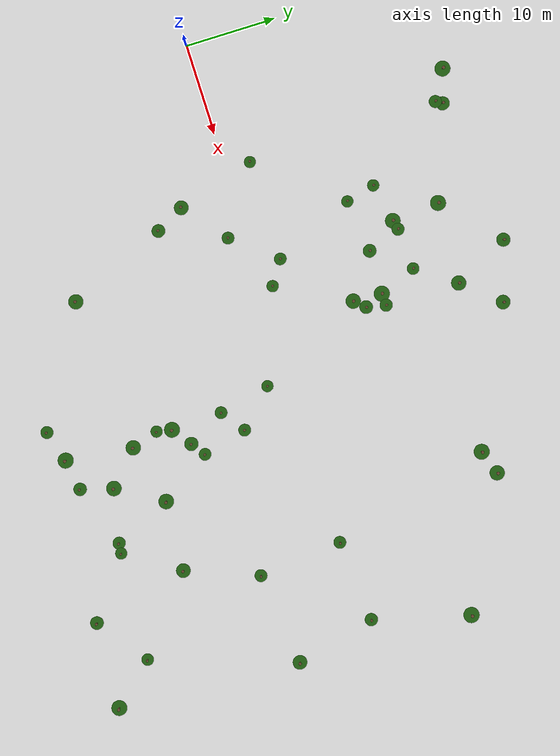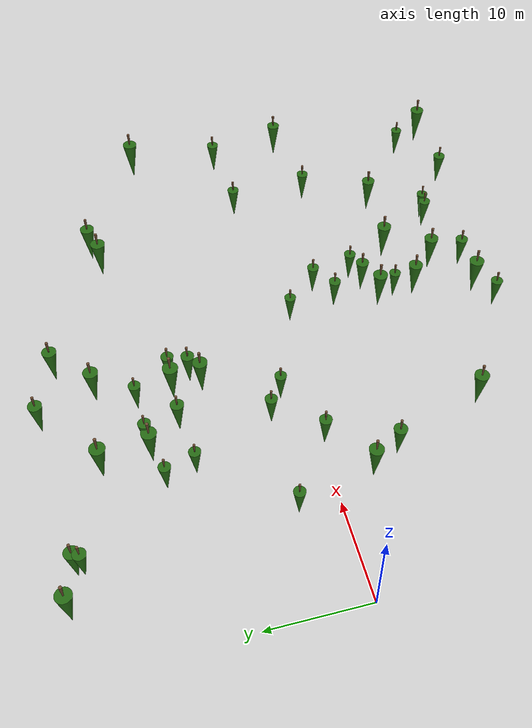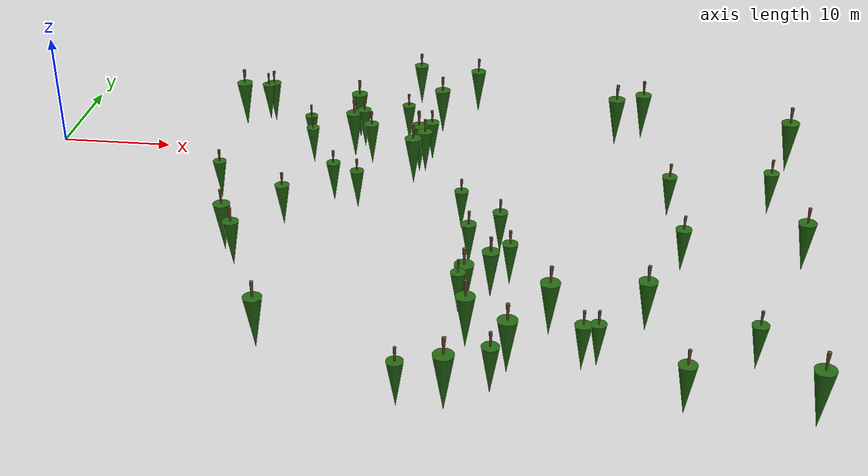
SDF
<sdf version="1.10">
 <model name="lehrforst_trees">
  <static>true</static>
  <link name="tree_0749">
   <collision name="tree_0749_collision">
    <pose>38.928 -26.196 -2.438 3.142 0.035 0</pose>
    <geometry><cone><radius>0.174</radius><length>2.784</length></cone></geometry>
   </collision>
   <visual name="tree_0749_trunk">
    <pose>38.928 -26.196 -2.438 3.142 0.035 0</pose>
    <geometry><cone><radius>0.174</radius><length>2.784</length></cone></geometry>
    <material>
     <ambient>0.42 0.29 0.19 1</ambient>
     <diffuse>0.42 0.29 0.19 1</diffuse>
     <specular>0.42 0.29 0.19 1</specular>
    </material>
   </visual>
   <visual name="tree_0749_leaves">
    <pose>38.928 -26.196 -5.222 3.142 0 0</pose>
    <geometry><cone><radius>0.870</radius><length>5.220</length></cone></geometry>
    <material>
     <ambient>0.14 0.40 0.07 1</ambient>
     <diffuse>0.14 0.40 0.07 1</diffuse>
     <specular>0.14 0.40 0.07 1</specular>
    </material>
   </visual>
  </link>
  <link name="tree_0750">
   <collision name="tree_0750_collision">
    <pose>31.921 12.234 -2.414 3.142 0.017 0</pose>
    <geometry><cone><radius>0.174</radius><length>2.784</length></cone></geometry>
   </collision>
   <visual name="tree_0750_trunk">
    <pose>31.921 12.234 -2.414 3.142 0.017 0</pose>
    <geometry><cone><radius>0.174</radius><length>2.784</length></cone></geometry>
    <material>
     <ambient>0.42 0.29 0.19 1</ambient>
     <diffuse>0.42 0.29 0.19 1</diffuse>
     <specular>0.42 0.29 0.19 1</specular>
    </material>
   </visual>
   <visual name="tree_0750_leaves">
    <pose>31.921 12.234 -5.198 3.142 0 0</pose>
    <geometry><cone><radius>0.870</radius><length>5.220</length></cone></geometry>
    <material>
     <ambient>0.14 0.40 0.07 1</ambient>
     <diffuse>0.14 0.40 0.07 1</diffuse>
     <specular>0.14 0.40 0.07 1</specular>
    </material>
   </visual>
  </link>
  <link name="tree_0751">
   <collision name="tree_0751_collision">
    <pose>10.216 26.211 -5.117 3.142 0.024 0</pose>
    <geometry><cone><radius>0.174</radius><length>2.784</length></cone></geometry>
   </collision>
   <visual name="tree_0751_trunk">
    <pose>10.216 26.211 -5.117 3.142 0.024 0</pose>
    <geometry><cone><radius>0.174</radius><length>2.784</length></cone></geometry>
    <material>
     <ambient>0.42 0.29 0.19 1</ambient>
     <diffuse>0.42 0.29 0.19 1</diffuse>
     <specular>0.42 0.29 0.19 1</specular>
    </material>
   </visual>
   <visual name="tree_0751_leaves">
    <pose>10.216 26.211 -7.901 3.142 0 0</pose>
    <geometry><cone><radius>0.870</radius><length>5.220</length></cone></geometry>
    <material>
     <ambient>0.14 0.40 0.07 1</ambient>
     <diffuse>0.14 0.40 0.07 1</diffuse>
     <specular>0.14 0.40 0.07 1</specular>
    </material>
   </visual>
  </link>
  <link name="tree_0753">
   <collision name="tree_0753_collision">
    <pose>68.038 10.890 0.636 3.142 0.001 0</pose>
    <geometry><cone><radius>0.174</radius><length>2.784</length></cone></geometry>
   </collision>
   <visual name="tree_0753_trunk">
    <pose>68.038 10.890 0.636 3.142 0.001 0</pose>
    <geometry><cone><radius>0.174</radius><length>2.784</length></cone></geometry>
    <material>
     <ambient>0.42 0.29 0.19 1</ambient>
     <diffuse>0.42 0.29 0.19 1</diffuse>
     <specular>0.42 0.29 0.19 1</specular>
    </material>
   </visual>
   <visual name="tree_0753_leaves">
    <pose>68.038 10.890 -2.148 3.142 0 0</pose>
    <geometry><cone><radius>0.870</radius><length>5.220</length></cone></geometry>
    <material>
     <ambient>0.14 0.40 0.07 1</ambient>
     <diffuse>0.14 0.40 0.07 1</diffuse>
     <specular>0.14 0.40 0.07 1</specular>
    </material>
   </visual>
  </link>
  <link name="tree_0756">
   <collision name="tree_0756_collision">
    <pose>24.274 21.160 -3.410 3.142 0.036 0</pose>
    <geometry><cone><radius>0.173</radius><length>2.768</length></cone></geometry>
   </collision>
   <visual name="tree_0756_trunk">
    <pose>24.274 21.160 -3.410 3.142 0.036 0</pose>
    <geometry><cone><radius>0.173</radius><length>2.768</length></cone></geometry>
    <material>
     <ambient>0.42 0.29 0.19 1</ambient>
     <diffuse>0.42 0.29 0.19 1</diffuse>
     <specular>0.42 0.29 0.19 1</specular>
    </material>
   </visual>
   <visual name="tree_0756_leaves">
    <pose>24.274 21.160 -6.178 3.142 0 0</pose>
    <geometry><cone><radius>0.865</radius><length>5.190</length></cone></geometry>
    <material>
     <ambient>0.14 0.40 0.07 1</ambient>
     <diffuse>0.14 0.40 0.07 1</diffuse>
     <specular>0.14 0.40 0.07 1</specular>
    </material>
   </visual>
  </link>
  <link name="tree_0763">
   <collision name="tree_0763_collision">
    <pose>51.596 17.343 -0.779 3.142 0.015 0</pose>
    <geometry><cone><radius>0.172</radius><length>2.752</length></cone></geometry>
   </collision>
   <visual name="tree_0763_trunk">
    <pose>51.596 17.343 -0.779 3.142 0.015 0</pose>
    <geometry><cone><radius>0.172</radius><length>2.752</length></cone></geometry>
    <material>
     <ambient>0.42 0.29 0.19 1</ambient>
     <diffuse>0.42 0.29 0.19 1</diffuse>
     <specular>0.42 0.29 0.19 1</specular>
    </material>
   </visual>
   <visual name="tree_0763_leaves">
    <pose>51.596 17.343 -3.531 3.142 0 0</pose>
    <geometry><cone><radius>0.860</radius><length>5.160</length></cone></geometry>
    <material>
     <ambient>0.14 0.40 0.07 1</ambient>
     <diffuse>0.14 0.40 0.07 1</diffuse>
     <specular>0.14 0.40 0.07 1</specular>
    </material>
   </visual>
  </link>
  <link name="tree_0765">
   <collision name="tree_0765_collision">
    <pose>39.214 -14.090 -1.990 3.142 0.033 0</pose>
    <geometry><cone><radius>0.171</radius><length>2.736</length></cone></geometry>
   </collision>
   <visual name="tree_0765_trunk">
    <pose>39.214 -14.090 -1.990 3.142 0.033 0</pose>
    <geometry><cone><radius>0.171</radius><length>2.736</length></cone></geometry>
    <material>
     <ambient>0.42 0.29 0.19 1</ambient>
     <diffuse>0.42 0.29 0.19 1</diffuse>
     <specular>0.42 0.29 0.19 1</specular>
    </material>
   </visual>
   <visual name="tree_0765_leaves">
    <pose>39.214 -14.090 -4.726 3.142 0 0</pose>
    <geometry><cone><radius>0.855</radius><length>5.130</length></cone></geometry>
    <material>
     <ambient>0.14 0.40 0.07 1</ambient>
     <diffuse>0.14 0.40 0.07 1</diffuse>
     <specular>0.14 0.40 0.07 1</specular>
    </material>
   </visual>
  </link>
  <link name="tree_0772">
   <collision name="tree_0772_collision">
    <pose>66.215 -28.492 0.289 3.142 0.020 0</pose>
    <geometry><cone><radius>0.170</radius><length>2.720</length></cone></geometry>
   </collision>
   <visual name="tree_0772_trunk">
    <pose>66.215 -28.492 0.289 3.142 0.020 0</pose>
    <geometry><cone><radius>0.170</radius><length>2.720</length></cone></geometry>
    <material>
     <ambient>0.42 0.29 0.19 1</ambient>
     <diffuse>0.42 0.29 0.19 1</diffuse>
     <specular>0.42 0.29 0.19 1</specular>
    </material>
   </visual>
   <visual name="tree_0772_leaves">
    <pose>66.215 -28.492 -2.431 3.142 0 0</pose>
    <geometry><cone><radius>0.850</radius><length>5.100</length></cone></geometry>
    <material>
     <ambient>0.14 0.40 0.07 1</ambient>
     <diffuse>0.14 0.40 0.07 1</diffuse>
     <specular>0.14 0.40 0.07 1</specular>
    </material>
   </visual>
  </link>
  <link name="tree_0776">
   <collision name="tree_0776_collision">
    <pose>24.644 15.816 -3.138 3.142 0.025 0</pose>
    <geometry><cone><radius>0.169</radius><length>2.704</length></cone></geometry>
   </collision>
   <visual name="tree_0776_trunk">
    <pose>24.644 15.816 -3.138 3.142 0.025 0</pose>
    <geometry><cone><radius>0.169</radius><length>2.704</length></cone></geometry>
    <material>
     <ambient>0.42 0.29 0.19 1</ambient>
     <diffuse>0.42 0.29 0.19 1</diffuse>
     <specular>0.42 0.29 0.19 1</specular>
    </material>
   </visual>
   <visual name="tree_0776_leaves">
    <pose>24.644 15.816 -5.842 3.142 0 0</pose>
    <geometry><cone><radius>0.845</radius><length>5.070</length></cone></geometry>
    <material>
     <ambient>0.14 0.40 0.07 1</ambient>
     <diffuse>0.14 0.40 0.07 1</diffuse>
     <specular>0.14 0.40 0.07 1</specular>
    </material>
   </visual>
  </link>
  <link name="tree_0780">
   <collision name="tree_0780_collision">
    <pose>46.467 -17.007 -1.354 3.142 0.034 0</pose>
    <geometry><cone><radius>0.168</radius><length>2.688</length></cone></geometry>
   </collision>
   <visual name="tree_0780_trunk">
    <pose>46.467 -17.007 -1.354 3.142 0.034 0</pose>
    <geometry><cone><radius>0.168</radius><length>2.688</length></cone></geometry>
    <material>
     <ambient>0.42 0.29 0.19 1</ambient>
     <diffuse>0.42 0.29 0.19 1</diffuse>
     <specular>0.42 0.29 0.19 1</specular>
    </material>
   </visual>
   <visual name="tree_0780_leaves">
    <pose>46.467 -17.007 -4.042 3.142 0 0</pose>
    <geometry><cone><radius>0.840</radius><length>5.040</length></cone></geometry>
    <material>
     <ambient>0.14 0.40 0.07 1</ambient>
     <diffuse>0.14 0.40 0.07 1</diffuse>
     <specular>0.14 0.40 0.07 1</specular>
    </material>
   </visual>
  </link>
  <link name="tree_0782">
   <collision name="tree_0782_collision">
    <pose>43.416 -22.044 -1.789 3.142 0.003 0</pose>
    <geometry><cone><radius>0.167</radius><length>2.672</length></cone></geometry>
   </collision>
   <visual name="tree_0782_trunk">
    <pose>43.416 -22.044 -1.789 3.142 0.003 0</pose>
    <geometry><cone><radius>0.167</radius><length>2.672</length></cone></geometry>
    <material>
     <ambient>0.42 0.29 0.19 1</ambient>
     <diffuse>0.42 0.29 0.19 1</diffuse>
     <specular>0.42 0.29 0.19 1</specular>
    </material>
   </visual>
   <visual name="tree_0782_leaves">
    <pose>43.416 -22.044 -4.461 3.142 0 0</pose>
    <geometry><cone><radius>0.835</radius><length>5.010</length></cone></geometry>
    <material>
     <ambient>0.14 0.40 0.07 1</ambient>
     <diffuse>0.14 0.40 0.07 1</diffuse>
     <specular>0.14 0.40 0.07 1</specular>
    </material>
   </visual>
  </link>
  <link name="tree_0783">
   <collision name="tree_0783_collision">
    <pose>31.758 9.007 -2.280 3.142 0.028 0</pose>
    <geometry><cone><radius>0.166</radius><length>2.656</length></cone></geometry>
   </collision>
   <visual name="tree_0783_trunk">
    <pose>31.758 9.007 -2.280 3.142 0.028 0</pose>
    <geometry><cone><radius>0.166</radius><length>2.656</length></cone></geometry>
    <material>
     <ambient>0.42 0.29 0.19 1</ambient>
     <diffuse>0.42 0.29 0.19 1</diffuse>
     <specular>0.42 0.29 0.19 1</specular>
    </material>
   </visual>
   <visual name="tree_0783_leaves">
    <pose>31.758 9.007 -4.936 3.142 0 0</pose>
    <geometry><cone><radius>0.830</radius><length>4.980</length></cone></geometry>
    <material>
     <ambient>0.14 0.40 0.07 1</ambient>
     <diffuse>0.14 0.40 0.07 1</diffuse>
     <specular>0.14 0.40 0.07 1</specular>
    </material>
   </visual>
  </link>
  <link name="tree_0788">
   <collision name="tree_0788_collision">
    <pose>33.335 20.586 -2.241 3.142 0.016 0</pose>
    <geometry><cone><radius>0.165</radius><length>2.640</length></cone></geometry>
   </collision>
   <visual name="tree_0788_trunk">
    <pose>33.335 20.586 -2.241 3.142 0.016 0</pose>
    <geometry><cone><radius>0.165</radius><length>2.640</length></cone></geometry>
    <material>
     <ambient>0.42 0.29 0.19 1</ambient>
     <diffuse>0.42 0.29 0.19 1</diffuse>
     <specular>0.42 0.29 0.19 1</specular>
    </material>
   </visual>
   <visual name="tree_0788_leaves">
    <pose>33.335 20.586 -4.881 3.142 0 0</pose>
    <geometry><cone><radius>0.825</radius><length>4.950</length></cone></geometry>
    <material>
     <ambient>0.14 0.40 0.07 1</ambient>
     <diffuse>0.14 0.40 0.07 1</diffuse>
     <specular>0.14 0.40 0.07 1</specular>
    </material>
   </visual>
  </link>
  <link name="tree_0790">
   <collision name="tree_0790_collision">
    <pose>39.817 -18.717 -2.068 3.142 0.014 0</pose>
    <geometry><cone><radius>0.165</radius><length>2.640</length></cone></geometry>
   </collision>
   <visual name="tree_0790_trunk">
    <pose>39.817 -18.717 -2.068 3.142 0.014 0</pose>
    <geometry><cone><radius>0.165</radius><length>2.640</length></cone></geometry>
    <material>
     <ambient>0.42 0.29 0.19 1</ambient>
     <diffuse>0.42 0.29 0.19 1</diffuse>
     <specular>0.42 0.29 0.19 1</specular>
    </material>
   </visual>
   <visual name="tree_0790_leaves">
    <pose>39.817 -18.717 -4.708 3.142 0 0</pose>
    <geometry><cone><radius>0.825</radius><length>4.950</length></cone></geometry>
    <material>
     <ambient>0.14 0.40 0.07 1</ambient>
     <diffuse>0.14 0.40 0.07 1</diffuse>
     <specular>0.14 0.40 0.07 1</specular>
    </material>
   </visual>
  </link>
  <link name="tree_0793">
   <collision name="tree_0793_collision">
    <pose>22.698 -19.930 -2.718 3.142 0.026 0</pose>
    <geometry><cone><radius>0.164</radius><length>2.624</length></cone></geometry>
   </collision>
   <visual name="tree_0793_trunk">
    <pose>22.698 -19.930 -2.718 3.142 0.026 0</pose>
    <geometry><cone><radius>0.164</radius><length>2.624</length></cone></geometry>
    <material>
     <ambient>0.42 0.29 0.19 1</ambient>
     <diffuse>0.42 0.29 0.19 1</diffuse>
     <specular>0.42 0.29 0.19 1</specular>
    </material>
   </visual>
   <visual name="tree_0793_leaves">
    <pose>22.698 -19.930 -5.342 3.142 0 0</pose>
    <geometry><cone><radius>0.820</radius><length>4.920</length></cone></geometry>
    <material>
     <ambient>0.14 0.40 0.07 1</ambient>
     <diffuse>0.14 0.40 0.07 1</diffuse>
     <specular>0.14 0.40 0.07 1</specular>
    </material>
   </visual>
  </link>
  <link name="tree_0794">
   <collision name="tree_0794_collision">
    <pose>54.276 18.240 -0.547 3.142 0.006 0</pose>
    <geometry><cone><radius>0.164</radius><length>2.624</length></cone></geometry>
   </collision>
   <visual name="tree_0794_trunk">
    <pose>54.276 18.240 -0.547 3.142 0.006 0</pose>
    <geometry><cone><radius>0.164</radius><length>2.624</length></cone></geometry>
    <material>
     <ambient>0.42 0.29 0.19 1</ambient>
     <diffuse>0.42 0.29 0.19 1</diffuse>
     <specular>0.42 0.29 0.19 1</specular>
    </material>
   </visual>
   <visual name="tree_0794_leaves">
    <pose>54.276 18.240 -3.171 3.142 0 0</pose>
    <geometry><cone><radius>0.820</radius><length>4.920</length></cone></geometry>
    <material>
     <ambient>0.14 0.40 0.07 1</ambient>
     <diffuse>0.14 0.40 0.07 1</diffuse>
     <specular>0.14 0.40 0.07 1</specular>
    </material>
   </visual>
  </link>
  <link name="tree_0814">
   <collision name="tree_0814_collision">
    <pose>16.380 -5.848 -2.428 3.142 0.001 0</pose>
    <geometry><cone><radius>0.159</radius><length>2.544</length></cone></geometry>
   </collision>
   <visual name="tree_0814_trunk">
    <pose>16.380 -5.848 -2.428 3.142 0.001 0</pose>
    <geometry><cone><radius>0.159</radius><length>2.544</length></cone></geometry>
    <material>
     <ambient>0.42 0.29 0.19 1</ambient>
     <diffuse>0.42 0.29 0.19 1</diffuse>
     <specular>0.42 0.29 0.19 1</specular>
    </material>
   </visual>
   <visual name="tree_0814_leaves">
    <pose>16.380 -5.848 -4.972 3.142 0 0</pose>
    <geometry><cone><radius>0.795</radius><length>4.770</length></cone></geometry>
    <material>
     <ambient>0.14 0.40 0.07 1</ambient>
     <diffuse>0.14 0.40 0.07 1</diffuse>
     <specular>0.14 0.40 0.07 1</specular>
    </material>
   </visual>
  </link>
  <link name="tree_0816">
   <collision name="tree_0816_collision">
    <pose>36.776 24.527 -1.614 3.142 0.029 0</pose>
    <geometry><cone><radius>0.158</radius><length>2.528</length></cone></geometry>
   </collision>
   <visual name="tree_0816_trunk">
    <pose>36.776 24.527 -1.614 3.142 0.029 0</pose>
    <geometry><cone><radius>0.158</radius><length>2.528</length></cone></geometry>
    <material>
     <ambient>0.42 0.29 0.19 1</ambient>
     <diffuse>0.42 0.29 0.19 1</diffuse>
     <specular>0.42 0.29 0.19 1</specular>
    </material>
   </visual>
   <visual name="tree_0816_leaves">
    <pose>36.776 24.527 -4.142 3.142 0 0</pose>
    <geometry><cone><radius>0.790</radius><length>4.740</length></cone></geometry>
    <material>
     <ambient>0.14 0.40 0.07 1</ambient>
     <diffuse>0.14 0.40 0.07 1</diffuse>
     <specular>0.14 0.40 0.07 1</specular>
    </material>
   </visual>
  </link>
  <link name="tree_0817">
   <collision name="tree_0817_collision">
    <pose>54.143 -17.441 -0.358 3.142 0.003 0</pose>
    <geometry><cone><radius>0.157</radius><length>2.512</length></cone></geometry>
   </collision>
   <visual name="tree_0817_trunk">
    <pose>54.143 -17.441 -0.358 3.142 0.003 0</pose>
    <geometry><cone><radius>0.157</radius><length>2.512</length></cone></geometry>
    <material>
     <ambient>0.42 0.29 0.19 1</ambient>
     <diffuse>0.42 0.29 0.19 1</diffuse>
     <specular>0.42 0.29 0.19 1</specular>
    </material>
   </visual>
   <visual name="tree_0817_leaves">
    <pose>54.143 -17.441 -2.870 3.142 0 0</pose>
    <geometry><cone><radius>0.785</radius><length>4.710</length></cone></geometry>
    <material>
     <ambient>0.14 0.40 0.07 1</ambient>
     <diffuse>0.14 0.40 0.07 1</diffuse>
     <specular>0.14 0.40 0.07 1</specular>
    </material>
   </visual>
  </link>
  <link name="tree_0819">
   <collision name="tree_0819_collision">
    <pose>67.345 -8.341 0.613 3.142 0.013 0</pose>
    <geometry><cone><radius>0.156</radius><length>2.496</length></cone></geometry>
   </collision>
   <visual name="tree_0819_trunk">
    <pose>67.345 -8.341 0.613 3.142 0.013 0</pose>
    <geometry><cone><radius>0.156</radius><length>2.496</length></cone></geometry>
    <material>
     <ambient>0.42 0.29 0.19 1</ambient>
     <diffuse>0.42 0.29 0.19 1</diffuse>
     <specular>0.42 0.29 0.19 1</specular>
    </material>
   </visual>
   <visual name="tree_0819_leaves">
    <pose>67.345 -8.341 -1.883 3.142 0 0</pose>
    <geometry><cone><radius>0.780</radius><length>4.680</length></cone></geometry>
    <material>
     <ambient>0.14 0.40 0.07 1</ambient>
     <diffuse>0.14 0.40 0.07 1</diffuse>
     <specular>0.14 0.40 0.07 1</specular>
    </material>
   </visual>
  </link>
  <link name="tree_0823">
   <collision name="tree_0823_collision">
    <pose>13.922 25.006 -4.400 3.142 0.031 0</pose>
    <geometry><cone><radius>0.154</radius><length>2.464</length></cone></geometry>
   </collision>
   <visual name="tree_0823_trunk">
    <pose>13.922 25.006 -4.400 3.142 0.031 0</pose>
    <geometry><cone><radius>0.154</radius><length>2.464</length></cone></geometry>
    <material>
     <ambient>0.42 0.29 0.19 1</ambient>
     <diffuse>0.42 0.29 0.19 1</diffuse>
     <specular>0.42 0.29 0.19 1</specular>
    </material>
   </visual>
   <visual name="tree_0823_leaves">
    <pose>13.922 25.006 -6.864 3.142 0 0</pose>
    <geometry><cone><radius>0.770</radius><length>4.620</length></cone></geometry>
    <material>
     <ambient>0.14 0.40 0.07 1</ambient>
     <diffuse>0.14 0.40 0.07 1</diffuse>
     <specular>0.14 0.40 0.07 1</specular>
    </material>
   </visual>
  </link>
  <link name="tree_0830">
   <collision name="tree_0830_collision">
    <pose>41.306 -12.521 -1.571 3.142 0.004 0</pose>
    <geometry><cone><radius>0.152</radius><length>2.432</length></cone></geometry>
   </collision>
   <visual name="tree_0830_trunk">
    <pose>41.306 -12.521 -1.571 3.142 0.004 0</pose>
    <geometry><cone><radius>0.152</radius><length>2.432</length></cone></geometry>
    <material>
     <ambient>0.42 0.29 0.19 1</ambient>
     <diffuse>0.42 0.29 0.19 1</diffuse>
     <specular>0.42 0.29 0.19 1</specular>
    </material>
   </visual>
   <visual name="tree_0830_leaves">
    <pose>41.306 -12.521 -4.003 3.142 0 0</pose>
    <geometry><cone><radius>0.760</radius><length>4.560</length></cone></geometry>
    <material>
     <ambient>0.14 0.40 0.07 1</ambient>
     <diffuse>0.14 0.40 0.07 1</diffuse>
     <specular>0.14 0.40 0.07 1</specular>
    </material>
   </visual>
  </link>
  <link name="tree_0831">
   <collision name="tree_0831_collision">
    <pose>30.286 26.655 -2.184 3.142 0.025 0</pose>
    <geometry><cone><radius>0.152</radius><length>2.432</length></cone></geometry>
   </collision>
   <visual name="tree_0831_trunk">
    <pose>30.286 26.655 -2.184 3.142 0.025 0</pose>
    <geometry><cone><radius>0.152</radius><length>2.432</length></cone></geometry>
    <material>
     <ambient>0.42 0.29 0.19 1</ambient>
     <diffuse>0.42 0.29 0.19 1</diffuse>
     <specular>0.42 0.29 0.19 1</specular>
    </material>
   </visual>
   <visual name="tree_0831_leaves">
    <pose>30.286 26.655 -4.616 3.142 0 0</pose>
    <geometry><cone><radius>0.760</radius><length>4.560</length></cone></geometry>
    <material>
     <ambient>0.14 0.40 0.07 1</ambient>
     <diffuse>0.14 0.40 0.07 1</diffuse>
     <specular>0.14 0.40 0.07 1</specular>
    </material>
   </visual>
  </link>
  <link name="tree_0840">
   <collision name="tree_0840_collision">
    <pose>27.053 12.389 -2.618 3.142 0.010 0</pose>
    <geometry><cone><radius>0.148</radius><length>2.368</length></cone></geometry>
   </collision>
   <visual name="tree_0840_trunk">
    <pose>27.053 12.389 -2.618 3.142 0.010 0</pose>
    <geometry><cone><radius>0.148</radius><length>2.368</length></cone></geometry>
    <material>
     <ambient>0.42 0.29 0.19 1</ambient>
     <diffuse>0.42 0.29 0.19 1</diffuse>
     <specular>0.42 0.29 0.19 1</specular>
    </material>
   </visual>
   <visual name="tree_0840_leaves">
    <pose>27.053 12.389 -4.986 3.142 0 0</pose>
    <geometry><cone><radius>0.740</radius><length>4.440</length></cone></geometry>
    <material>
     <ambient>0.14 0.40 0.07 1</ambient>
     <diffuse>0.14 0.40 0.07 1</diffuse>
     <specular>0.14 0.40 0.07 1</specular>
    </material>
   </visual>
  </link>
  <link name="tree_0842">
   <collision name="tree_0842_collision">
    <pose>18.046 -8.983 -2.336 3.142 0.022 0</pose>
    <geometry><cone><radius>0.148</radius><length>2.368</length></cone></geometry>
   </collision>
   <visual name="tree_0842_trunk">
    <pose>18.046 -8.983 -2.336 3.142 0.022 0</pose>
    <geometry><cone><radius>0.148</radius><length>2.368</length></cone></geometry>
    <material>
     <ambient>0.42 0.29 0.19 1</ambient>
     <diffuse>0.42 0.29 0.19 1</diffuse>
     <specular>0.42 0.29 0.19 1</specular>
    </material>
   </visual>
   <visual name="tree_0842_leaves">
    <pose>18.046 -8.983 -4.704 3.142 0 0</pose>
    <geometry><cone><radius>0.740</radius><length>4.440</length></cone></geometry>
    <material>
     <ambient>0.14 0.40 0.07 1</ambient>
     <diffuse>0.14 0.40 0.07 1</diffuse>
     <specular>0.14 0.40 0.07 1</specular>
    </material>
   </visual>
  </link>
  <link name="tree_0846">
   <collision name="tree_0846_collision">
    <pose>32.807 10.151 -2.072 3.142 0.037 0</pose>
    <geometry><cone><radius>0.147</radius><length>2.352</length></cone></geometry>
   </collision>
   <visual name="tree_0846_trunk">
    <pose>32.807 10.151 -2.072 3.142 0.037 0</pose>
    <geometry><cone><radius>0.147</radius><length>2.352</length></cone></geometry>
    <material>
     <ambient>0.42 0.29 0.19 1</ambient>
     <diffuse>0.42 0.29 0.19 1</diffuse>
     <specular>0.42 0.29 0.19 1</specular>
    </material>
   </visual>
   <visual name="tree_0846_leaves">
    <pose>32.807 10.151 -4.424 3.142 0 0</pose>
    <geometry><cone><radius>0.735</radius><length>4.410</length></cone></geometry>
    <material>
     <ambient>0.14 0.40 0.07 1</ambient>
     <diffuse>0.14 0.40 0.07 1</diffuse>
     <specular>0.14 0.40 0.07 1</specular>
    </material>
   </visual>
  </link>
  <link name="tree_0849">
   <collision name="tree_0849_collision">
    <pose>56.758 -28.097 -0.429 3.142 0.017 0</pose>
    <geometry><cone><radius>0.146</radius><length>2.336</length></cone></geometry>
   </collision>
   <visual name="tree_0849_trunk">
    <pose>56.758 -28.097 -0.429 3.142 0.017 0</pose>
    <geometry><cone><radius>0.146</radius><length>2.336</length></cone></geometry>
    <material>
     <ambient>0.42 0.29 0.19 1</ambient>
     <diffuse>0.42 0.29 0.19 1</diffuse>
     <specular>0.42 0.29 0.19 1</specular>
    </material>
   </visual>
   <visual name="tree_0849_leaves">
    <pose>56.758 -28.097 -2.765 3.142 0 0</pose>
    <geometry><cone><radius>0.730</radius><length>4.380</length></cone></geometry>
    <material>
     <ambient>0.14 0.40 0.07 1</ambient>
     <diffuse>0.14 0.40 0.07 1</diffuse>
     <specular>0.14 0.40 0.07 1</specular>
    </material>
   </visual>
  </link>
  <link name="tree_0851">
   <collision name="tree_0851_collision">
    <pose>42.399 -25.593 -1.857 3.142 0.006 0</pose>
    <geometry><cone><radius>0.145</radius><length>2.320</length></cone></geometry>
   </collision>
   <visual name="tree_0851_trunk">
    <pose>42.399 -25.593 -1.857 3.142 0.006 0</pose>
    <geometry><cone><radius>0.145</radius><length>2.320</length></cone></geometry>
    <material>
     <ambient>0.42 0.29 0.19 1</ambient>
     <diffuse>0.42 0.29 0.19 1</diffuse>
     <specular>0.42 0.29 0.19 1</specular>
    </material>
   </visual>
   <visual name="tree_0851_leaves">
    <pose>42.399 -25.593 -4.177 3.142 0 0</pose>
    <geometry><cone><radius>0.725</radius><length>4.350</length></cone></geometry>
    <material>
     <ambient>0.14 0.40 0.07 1</ambient>
     <diffuse>0.14 0.40 0.07 1</diffuse>
     <specular>0.14 0.40 0.07 1</specular>
    </material>
   </visual>
  </link>
  <link name="tree_0867">
   <collision name="tree_0867_collision">
    <pose>65.249 0.408 0.553 3.142 0.006 0</pose>
    <geometry><cone><radius>0.141</radius><length>2.256</length></cone></geometry>
   </collision>
   <visual name="tree_0867_trunk">
    <pose>65.249 0.408 0.553 3.142 0.006 0</pose>
    <geometry><cone><radius>0.141</radius><length>2.256</length></cone></geometry>
    <material>
     <ambient>0.42 0.29 0.19 1</ambient>
     <diffuse>0.42 0.29 0.19 1</diffuse>
     <specular>0.42 0.29 0.19 1</specular>
    </material>
   </visual>
   <visual name="tree_0867_leaves">
    <pose>65.249 0.408 -1.703 3.142 0 0</pose>
    <geometry><cone><radius>0.705</radius><length>4.230</length></cone></geometry>
    <material>
     <ambient>0.14 0.40 0.07 1</ambient>
     <diffuse>0.14 0.40 0.07 1</diffuse>
     <specular>0.14 0.40 0.07 1</specular>
    </material>
   </visual>
  </link>
  <link name="tree_0868">
   <collision name="tree_0868_collision">
    <pose>13.504 24.276 -4.279 3.142 0.017 0</pose>
    <geometry><cone><radius>0.141</radius><length>2.256</length></cone></geometry>
   </collision>
   <visual name="tree_0868_trunk">
    <pose>13.504 24.276 -4.279 3.142 0.017 0</pose>
    <geometry><cone><radius>0.141</radius><length>2.256</length></cone></geometry>
    <material>
     <ambient>0.42 0.29 0.19 1</ambient>
     <diffuse>0.42 0.29 0.19 1</diffuse>
     <specular>0.42 0.29 0.19 1</specular>
    </material>
   </visual>
   <visual name="tree_0868_leaves">
    <pose>13.504 24.276 -6.535 3.142 0 0</pose>
    <geometry><cone><radius>0.705</radius><length>4.230</length></cone></geometry>
    <material>
     <ambient>0.14 0.40 0.07 1</ambient>
     <diffuse>0.14 0.40 0.07 1</diffuse>
     <specular>0.14 0.40 0.07 1</specular>
    </material>
   </visual>
  </link>
  <link name="tree_0869">
   <collision name="tree_0869_collision">
    <pose>49.229 -23.228 -0.941 3.142 0.008 0</pose>
    <geometry><cone><radius>0.140</radius><length>2.240</length></cone></geometry>
   </collision>
   <visual name="tree_0869_trunk">
    <pose>49.229 -23.228 -0.941 3.142 0.008 0</pose>
    <geometry><cone><radius>0.140</radius><length>2.240</length></cone></geometry>
    <material>
     <ambient>0.42 0.29 0.19 1</ambient>
     <diffuse>0.42 0.29 0.19 1</diffuse>
     <specular>0.42 0.29 0.19 1</specular>
    </material>
   </visual>
   <visual name="tree_0869_leaves">
    <pose>49.229 -23.228 -3.181 3.142 0 0</pose>
    <geometry><cone><radius>0.700</radius><length>4.200</length></cone></geometry>
    <material>
     <ambient>0.14 0.40 0.07 1</ambient>
     <diffuse>0.14 0.40 0.07 1</diffuse>
     <specular>0.14 0.40 0.07 1</specular>
    </material>
   </visual>
  </link>
  <link name="tree_0870">
   <collision name="tree_0870_collision">
    <pose>33.261 12.293 -2.036 3.142 0.002 0</pose>
    <geometry><cone><radius>0.140</radius><length>2.240</length></cone></geometry>
   </collision>
   <visual name="tree_0870_trunk">
    <pose>33.261 12.293 -2.036 3.142 0.002 0</pose>
    <geometry><cone><radius>0.140</radius><length>2.240</length></cone></geometry>
    <material>
     <ambient>0.42 0.29 0.19 1</ambient>
     <diffuse>0.42 0.29 0.19 1</diffuse>
     <specular>0.42 0.29 0.19 1</specular>
    </material>
   </visual>
   <visual name="tree_0870_leaves">
    <pose>33.261 12.293 -4.276 3.142 0 0</pose>
    <geometry><cone><radius>0.700</radius><length>4.200</length></cone></geometry>
    <material>
     <ambient>0.14 0.40 0.07 1</ambient>
     <diffuse>0.14 0.40 0.07 1</diffuse>
     <specular>0.14 0.40 0.07 1</specular>
    </material>
   </visual>
  </link>
  <link name="tree_0871">
   <collision name="tree_0871_collision">
    <pose>25.709 16.063 -2.845 3.142 0.002 0</pose>
    <geometry><cone><radius>0.140</radius><length>2.240</length></cone></geometry>
   </collision>
   <visual name="tree_0871_trunk">
    <pose>25.709 16.063 -2.845 3.142 0.002 0</pose>
    <geometry><cone><radius>0.140</radius><length>2.240</length></cone></geometry>
    <material>
     <ambient>0.42 0.29 0.19 1</ambient>
     <diffuse>0.42 0.29 0.19 1</diffuse>
     <specular>0.42 0.29 0.19 1</specular>
    </material>
   </visual>
   <visual name="tree_0871_leaves">
    <pose>25.709 16.063 -5.085 3.142 0 0</pose>
    <geometry><cone><radius>0.700</radius><length>4.200</length></cone></geometry>
    <material>
     <ambient>0.14 0.40 0.07 1</ambient>
     <diffuse>0.14 0.40 0.07 1</diffuse>
     <specular>0.14 0.40 0.07 1</specular>
    </material>
   </visual>
  </link>
  <link name="tree_0874">
   <collision name="tree_0874_collision">
    <pose>35.394 -27.238 -2.626 3.142 0.022 0</pose>
    <geometry><cone><radius>0.139</radius><length>2.224</length></cone></geometry>
   </collision>
   <visual name="tree_0874_trunk">
    <pose>35.394 -27.238 -2.626 3.142 0.022 0</pose>
    <geometry><cone><radius>0.139</radius><length>2.224</length></cone></geometry>
    <material>
     <ambient>0.42 0.29 0.19 1</ambient>
     <diffuse>0.42 0.29 0.19 1</diffuse>
     <specular>0.42 0.29 0.19 1</specular>
    </material>
   </visual>
   <visual name="tree_0874_leaves">
    <pose>35.394 -27.238 -4.850 3.142 0 0</pose>
    <geometry><cone><radius>0.695</radius><length>4.170</length></cone></geometry>
    <material>
     <ambient>0.14 0.40 0.07 1</ambient>
     <diffuse>0.14 0.40 0.07 1</diffuse>
     <specular>0.14 0.40 0.07 1</specular>
    </material>
   </visual>
  </link>
  <link name="tree_0877">
   <collision name="tree_0877_collision">
    <pose>57.173 -9.555 -0.020 3.142 0.033 0</pose>
    <geometry><cone><radius>0.138</radius><length>2.208</length></cone></geometry>
   </collision>
   <visual name="tree_0877_trunk">
    <pose>57.173 -9.555 -0.020 3.142 0.033 0</pose>
    <geometry><cone><radius>0.138</radius><length>2.208</length></cone></geometry>
    <material>
     <ambient>0.42 0.29 0.19 1</ambient>
     <diffuse>0.42 0.29 0.19 1</diffuse>
     <specular>0.42 0.29 0.19 1</specular>
    </material>
   </visual>
   <visual name="tree_0877_leaves">
    <pose>57.173 -9.555 -2.228 3.142 0 0</pose>
    <geometry><cone><radius>0.690</radius><length>4.140</length></cone></geometry>
    <material>
     <ambient>0.14 0.40 0.07 1</ambient>
     <diffuse>0.14 0.40 0.07 1</diffuse>
     <specular>0.14 0.40 0.07 1</specular>
    </material>
   </visual>
  </link>
  <link name="tree_0878">
   <collision name="tree_0878_collision">
    <pose>21.076 -1.960 -2.302 3.142 0.030 0</pose>
    <geometry><cone><radius>0.138</radius><length>2.208</length></cone></geometry>
   </collision>
   <visual name="tree_0878_trunk">
    <pose>21.076 -1.960 -2.302 3.142 0.030 0</pose>
    <geometry><cone><radius>0.138</radius><length>2.208</length></cone></geometry>
    <material>
     <ambient>0.42 0.29 0.19 1</ambient>
     <diffuse>0.42 0.29 0.19 1</diffuse>
     <specular>0.42 0.29 0.19 1</specular>
    </material>
   </visual>
   <visual name="tree_0878_leaves">
    <pose>21.076 -1.960 -4.510 3.142 0 0</pose>
    <geometry><cone><radius>0.690</radius><length>4.140</length></cone></geometry>
    <material>
     <ambient>0.14 0.40 0.07 1</ambient>
     <diffuse>0.14 0.40 0.07 1</diffuse>
     <specular>0.14 0.40 0.07 1</specular>
    </material>
   </visual>
  </link>
  <link name="tree_0882">
   <collision name="tree_0882_collision">
    <pose>56.299 -0.318 -0.018 3.142 0.036 0</pose>
    <geometry><cone><radius>0.137</radius><length>2.192</length></cone></geometry>
   </collision>
   <visual name="tree_0882_trunk">
    <pose>56.299 -0.318 -0.018 3.142 0.036 0</pose>
    <geometry><cone><radius>0.137</radius><length>2.192</length></cone></geometry>
    <material>
     <ambient>0.42 0.29 0.19 1</ambient>
     <diffuse>0.42 0.29 0.19 1</diffuse>
     <specular>0.42 0.29 0.19 1</specular>
    </material>
   </visual>
   <visual name="tree_0882_leaves">
    <pose>56.299 -0.318 -2.210 3.142 0 0</pose>
    <geometry><cone><radius>0.685</radius><length>4.110</length></cone></geometry>
    <material>
     <ambient>0.14 0.40 0.07 1</ambient>
     <diffuse>0.14 0.40 0.07 1</diffuse>
     <specular>0.14 0.40 0.07 1</specular>
    </material>
   </visual>
  </link>
  <link name="tree_0884">
   <collision name="tree_0884_collision">
    <pose>41.607 -6.519 -1.199 3.142 0.001 0</pose>
    <geometry><cone><radius>0.137</radius><length>2.192</length></cone></geometry>
   </collision>
   <visual name="tree_0884_trunk">
    <pose>41.607 -6.519 -1.199 3.142 0.001 0</pose>
    <geometry><cone><radius>0.137</radius><length>2.192</length></cone></geometry>
    <material>
     <ambient>0.42 0.29 0.19 1</ambient>
     <diffuse>0.42 0.29 0.19 1</diffuse>
     <specular>0.42 0.29 0.19 1</specular>
    </material>
   </visual>
   <visual name="tree_0884_leaves">
    <pose>41.607 -6.519 -3.391 3.142 0 0</pose>
    <geometry><cone><radius>0.685</radius><length>4.110</length></cone></geometry>
    <material>
     <ambient>0.14 0.40 0.07 1</ambient>
     <diffuse>0.14 0.40 0.07 1</diffuse>
     <specular>0.14 0.40 0.07 1</specular>
    </material>
   </visual>
  </link>
  <link name="tree_0885">
   <collision name="tree_0885_collision">
    <pose>39.033 -8.402 -1.464 3.142 0.024 0</pose>
    <geometry><cone><radius>0.137</radius><length>2.192</length></cone></geometry>
   </collision>
   <visual name="tree_0885_trunk">
    <pose>39.033 -8.402 -1.464 3.142 0.024 0</pose>
    <geometry><cone><radius>0.137</radius><length>2.192</length></cone></geometry>
    <material>
     <ambient>0.42 0.29 0.19 1</ambient>
     <diffuse>0.42 0.29 0.19 1</diffuse>
     <specular>0.42 0.29 0.19 1</specular>
    </material>
   </visual>
   <visual name="tree_0885_leaves">
    <pose>39.033 -8.402 -3.656 3.142 0 0</pose>
    <geometry><cone><radius>0.685</radius><length>4.110</length></cone></geometry>
    <material>
     <ambient>0.14 0.40 0.07 1</ambient>
     <diffuse>0.14 0.40 0.07 1</diffuse>
     <specular>0.14 0.40 0.07 1</specular>
    </material>
   </visual>
  </link>
  <link name="tree_0888">
   <collision name="tree_0888_collision">
    <pose>42.833 -11.428 -1.357 3.142 0.010 0</pose>
    <geometry><cone><radius>0.136</radius><length>2.176</length></cone></geometry>
   </collision>
   <visual name="tree_0888_trunk">
    <pose>42.833 -11.428 -1.357 3.142 0.010 0</pose>
    <geometry><cone><radius>0.136</radius><length>2.176</length></cone></geometry>
    <material>
     <ambient>0.42 0.29 0.19 1</ambient>
     <diffuse>0.42 0.29 0.19 1</diffuse>
     <specular>0.42 0.29 0.19 1</specular>
    </material>
   </visual>
   <visual name="tree_0888_leaves">
    <pose>42.833 -11.428 -3.533 3.142 0 0</pose>
    <geometry><cone><radius>0.680</radius><length>4.080</length></cone></geometry>
    <material>
     <ambient>0.14 0.40 0.07 1</ambient>
     <diffuse>0.14 0.40 0.07 1</diffuse>
     <specular>0.14 0.40 0.07 1</specular>
    </material>
   </visual>
  </link>
  <link name="tree_0893">
   <collision name="tree_0893_collision">
    <pose>24.972 2.795 -2.198 3.142 0.023 0</pose>
    <geometry><cone><radius>0.136</radius><length>2.176</length></cone></geometry>
   </collision>
   <visual name="tree_0893_trunk">
    <pose>24.972 2.795 -2.198 3.142 0.023 0</pose>
    <geometry><cone><radius>0.136</radius><length>2.176</length></cone></geometry>
    <material>
     <ambient>0.42 0.29 0.19 1</ambient>
     <diffuse>0.42 0.29 0.19 1</diffuse>
     <specular>0.42 0.29 0.19 1</specular>
    </material>
   </visual>
   <visual name="tree_0893_leaves">
    <pose>24.972 2.795 -4.374 3.142 0 0</pose>
    <geometry><cone><radius>0.680</radius><length>4.080</length></cone></geometry>
    <material>
     <ambient>0.14 0.40 0.07 1</ambient>
     <diffuse>0.14 0.40 0.07 1</diffuse>
     <specular>0.14 0.40 0.07 1</specular>
    </material>
   </visual>
  </link>
  <link name="tree_0896">
   <collision name="tree_0896_collision">
    <pose>30.337 16.310 -2.207 3.142 0.001 0</pose>
    <geometry><cone><radius>0.135</radius><length>2.160</length></cone></geometry>
   </collision>
   <visual name="tree_0896_trunk">
    <pose>30.337 16.310 -2.207 3.142 0.001 0</pose>
    <geometry><cone><radius>0.135</radius><length>2.160</length></cone></geometry>
    <material>
     <ambient>0.42 0.29 0.19 1</ambient>
     <diffuse>0.42 0.29 0.19 1</diffuse>
     <specular>0.42 0.29 0.19 1</specular>
    </material>
   </visual>
   <visual name="tree_0896_leaves">
    <pose>30.337 16.310 -4.367 3.142 0 0</pose>
    <geometry><cone><radius>0.675</radius><length>4.050</length></cone></geometry>
    <material>
     <ambient>0.14 0.40 0.07 1</ambient>
     <diffuse>0.14 0.40 0.07 1</diffuse>
     <specular>0.14 0.40 0.07 1</specular>
    </material>
   </visual>
  </link>
  <link name="tree_0901">
   <collision name="tree_0901_collision">
    <pose>62.107 -23.955 0.608 3.142 0.029 0</pose>
    <geometry><cone><radius>0.133</radius><length>2.128</length></cone></geometry>
   </collision>
   <visual name="tree_0901_trunk">
    <pose>62.107 -23.955 0.608 3.142 0.029 0</pose>
    <geometry><cone><radius>0.133</radius><length>2.128</length></cone></geometry>
    <material>
     <ambient>0.42 0.29 0.19 1</ambient>
     <diffuse>0.42 0.29 0.19 1</diffuse>
     <specular>0.42 0.29 0.19 1</specular>
    </material>
   </visual>
   <visual name="tree_0901_leaves">
    <pose>62.107 -23.955 -1.520 3.142 0 0</pose>
    <geometry><cone><radius>0.665</radius><length>3.990</length></cone></geometry>
    <material>
     <ambient>0.14 0.40 0.07 1</ambient>
     <diffuse>0.14 0.40 0.07 1</diffuse>
     <specular>0.14 0.40 0.07 1</specular>
    </material>
   </visual>
  </link>
  <link name="tree_0902">
   <collision name="tree_0902_collision">
    <pose>20.303 14.946 -3.310 3.142 0.028 0</pose>
    <geometry><cone><radius>0.133</radius><length>2.128</length></cone></geometry>
   </collision>
   <visual name="tree_0902_trunk">
    <pose>20.303 14.946 -3.310 3.142 0.028 0</pose>
    <geometry><cone><radius>0.133</radius><length>2.128</length></cone></geometry>
    <material>
     <ambient>0.42 0.29 0.19 1</ambient>
     <diffuse>0.42 0.29 0.19 1</diffuse>
     <specular>0.42 0.29 0.19 1</specular>
    </material>
   </visual>
   <visual name="tree_0902_leaves">
    <pose>20.303 14.946 -5.438 3.142 0 0</pose>
    <geometry><cone><radius>0.665</radius><length>3.990</length></cone></geometry>
    <material>
     <ambient>0.14 0.40 0.07 1</ambient>
     <diffuse>0.14 0.40 0.07 1</diffuse>
     <specular>0.14 0.40 0.07 1</specular>
    </material>
   </visual>
  </link>
  <link name="tree_0905">
   <collision name="tree_0905_collision">
    <pose>27.553 1.101 -2.012 3.142 0.012 0</pose>
    <geometry><cone><radius>0.132</radius><length>2.112</length></cone></geometry>
   </collision>
   <visual name="tree_0905_trunk">
    <pose>27.553 1.101 -2.012 3.142 0.012 0</pose>
    <geometry><cone><radius>0.132</radius><length>2.112</length></cone></geometry>
    <material>
     <ambient>0.42 0.29 0.19 1</ambient>
     <diffuse>0.42 0.29 0.19 1</diffuse>
     <specular>0.42 0.29 0.19 1</specular>
    </material>
   </visual>
   <visual name="tree_0905_leaves">
    <pose>27.553 1.101 -4.124 3.142 0 0</pose>
    <geometry><cone><radius>0.660</radius><length>3.960</length></cone></geometry>
    <material>
     <ambient>0.14 0.40 0.07 1</ambient>
     <diffuse>0.14 0.40 0.07 1</diffuse>
     <specular>0.14 0.40 0.07 1</specular>
    </material>
   </visual>
  </link>
  <link name="tree_0910">
   <collision name="tree_0910_collision">
    <pose>38.891 -15.741 -1.791 3.142 0.035 0</pose>
    <geometry><cone><radius>0.131</radius><length>2.096</length></cone></geometry>
   </collision>
   <visual name="tree_0910_trunk">
    <pose>38.891 -15.741 -1.791 3.142 0.035 0</pose>
    <geometry><cone><radius>0.131</radius><length>2.096</length></cone></geometry>
    <material>
     <ambient>0.42 0.29 0.19 1</ambient>
     <diffuse>0.42 0.29 0.19 1</diffuse>
     <specular>0.42 0.29 0.19 1</specular>
    </material>
   </visual>
   <visual name="tree_0910_leaves">
    <pose>38.891 -15.741 -3.887 3.142 0 0</pose>
    <geometry><cone><radius>0.655</radius><length>3.930</length></cone></geometry>
    <material>
     <ambient>0.14 0.40 0.07 1</ambient>
     <diffuse>0.14 0.40 0.07 1</diffuse>
     <specular>0.14 0.40 0.07 1</specular>
    </material>
   </visual>
  </link>
  <link name="tree_0911">
   <collision name="tree_0911_collision">
    <pose>21.134 11.710 -3.067 3.142 0.005 0</pose>
    <geometry><cone><radius>0.131</radius><length>2.096</length></cone></geometry>
   </collision>
   <visual name="tree_0911_trunk">
    <pose>21.134 11.710 -3.067 3.142 0.005 0</pose>
    <geometry><cone><radius>0.131</radius><length>2.096</length></cone></geometry>
    <material>
     <ambient>0.42 0.29 0.19 1</ambient>
     <diffuse>0.42 0.29 0.19 1</diffuse>
     <specular>0.42 0.29 0.19 1</specular>
    </material>
   </visual>
   <visual name="tree_0911_leaves">
    <pose>21.134 11.710 -5.163 3.142 0 0</pose>
    <geometry><cone><radius>0.655</radius><length>3.930</length></cone></geometry>
    <material>
     <ambient>0.14 0.40 0.07 1</ambient>
     <diffuse>0.14 0.40 0.07 1</diffuse>
     <specular>0.14 0.40 0.07 1</specular>
    </material>
   </visual>
  </link>
  <link name="tree_0915">
   <collision name="tree_0915_collision">
    <pose>37.796 -2.718 -1.421 3.142 0.009 0</pose>
    <geometry><cone><radius>0.130</radius><length>2.080</length></cone></geometry>
   </collision>
   <visual name="tree_0915_trunk">
    <pose>37.796 -2.718 -1.421 3.142 0.009 0</pose>
    <geometry><cone><radius>0.130</radius><length>2.080</length></cone></geometry>
    <material>
     <ambient>0.42 0.29 0.19 1</ambient>
     <diffuse>0.42 0.29 0.19 1</diffuse>
     <specular>0.42 0.29 0.19 1</specular>
    </material>
   </visual>
   <visual name="tree_0915_leaves">
    <pose>37.796 -2.718 -3.501 3.142 0 0</pose>
    <geometry><cone><radius>0.650</radius><length>3.900</length></cone></geometry>
    <material>
     <ambient>0.14 0.40 0.07 1</ambient>
     <diffuse>0.14 0.40 0.07 1</diffuse>
     <specular>0.14 0.40 0.07 1</specular>
    </material>
   </visual>
  </link>
  <link name="tree_0916">
   <collision name="tree_0916_collision">
    <pose>50.355 -23.331 -0.713 3.142 0.020 0</pose>
    <geometry><cone><radius>0.130</radius><length>2.080</length></cone></geometry>
   </collision>
   <visual name="tree_0916_trunk">
    <pose>50.355 -23.331 -0.713 3.142 0.020 0</pose>
    <geometry><cone><radius>0.130</radius><length>2.080</length></cone></geometry>
    <material>
     <ambient>0.42 0.29 0.19 1</ambient>
     <diffuse>0.42 0.29 0.19 1</diffuse>
     <specular>0.42 0.29 0.19 1</specular>
    </material>
   </visual>
   <visual name="tree_0916_leaves">
    <pose>50.355 -23.331 -2.793 3.142 0 0</pose>
    <geometry><cone><radius>0.650</radius><length>3.900</length></cone></geometry>
    <material>
     <ambient>0.14 0.40 0.07 1</ambient>
     <diffuse>0.14 0.40 0.07 1</diffuse>
     <specular>0.14 0.40 0.07 1</specular>
    </material>
   </visual>
  </link>
  <link name="tree_0917">
   <collision name="tree_0917_collision">
    <pose>13.835 2.823 -2.762 3.142 0.014 0</pose>
    <geometry><cone><radius>0.130</radius><length>2.080</length></cone></geometry>
   </collision>
   <visual name="tree_0917_trunk">
    <pose>13.835 2.823 -2.762 3.142 0.014 0</pose>
    <geometry><cone><radius>0.130</radius><length>2.080</length></cone></geometry>
    <material>
     <ambient>0.42 0.29 0.19 1</ambient>
     <diffuse>0.42 0.29 0.19 1</diffuse>
     <specular>0.42 0.29 0.19 1</specular>
    </material>
   </visual>
   <visual name="tree_0917_leaves">
    <pose>13.835 2.823 -4.842 3.142 0 0</pose>
    <geometry><cone><radius>0.650</radius><length>3.900</length></cone></geometry>
    <material>
     <ambient>0.14 0.40 0.07 1</ambient>
     <diffuse>0.14 0.40 0.07 1</diffuse>
     <specular>0.14 0.40 0.07 1</specular>
    </material>
   </visual>
  </link>
 </model>
</sdf>
